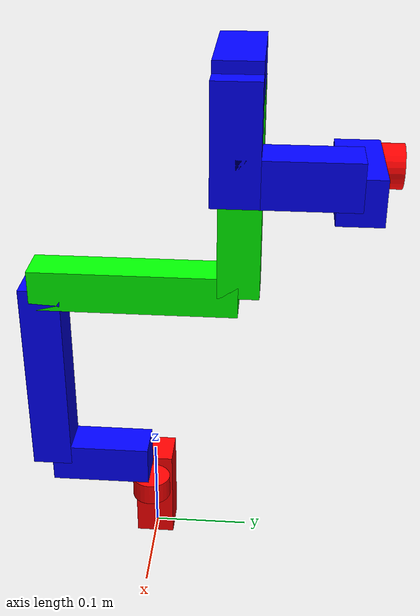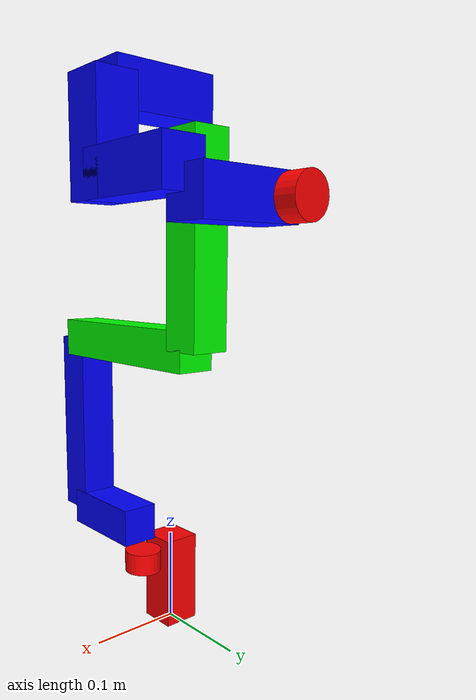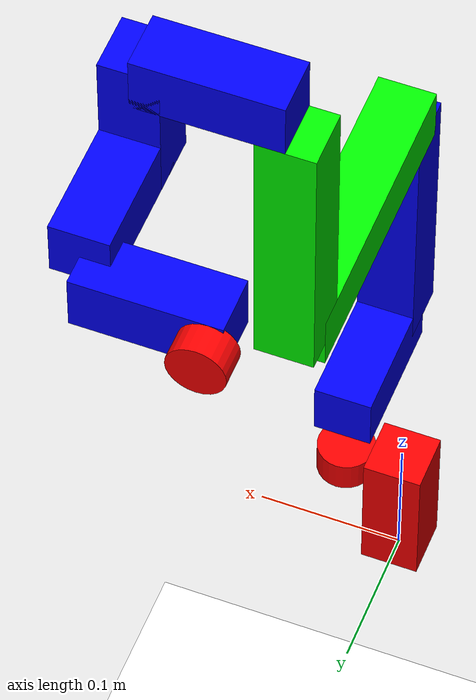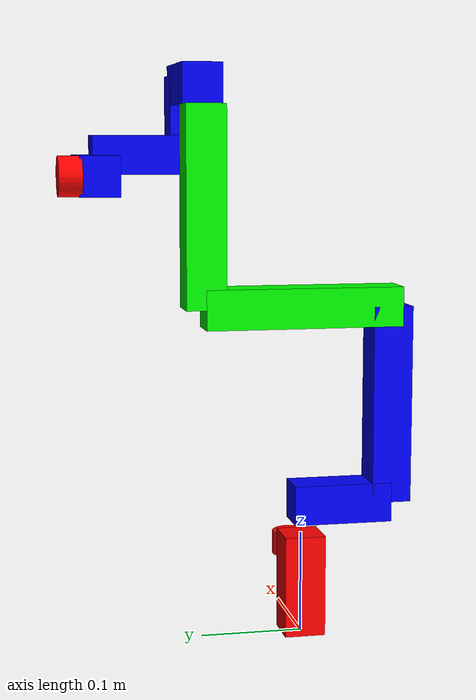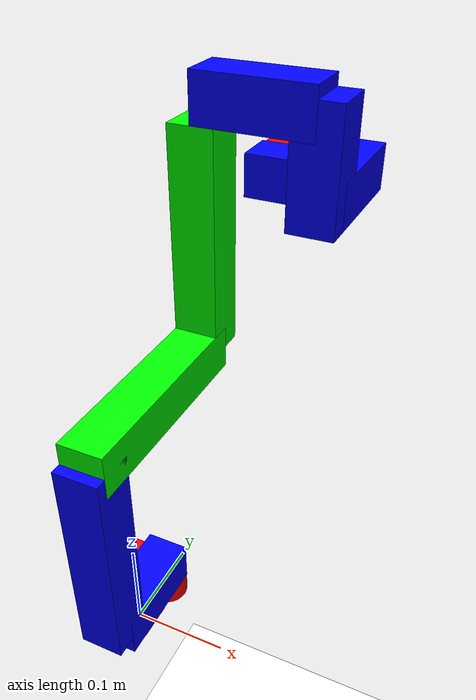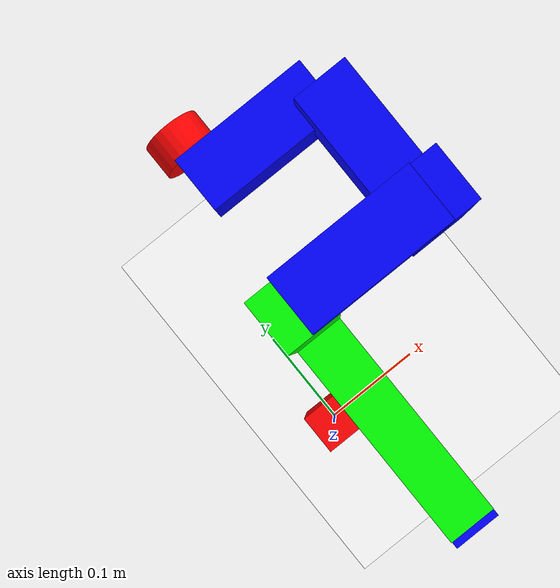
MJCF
<mujoco>
    <actuator>
        <motor gear="10" joint="hinge_1" name="pitch_motor" ctrlrange="-0.5 0.5" ctrllimited="true"/>
        <motor gear="10" joint="hinge_5" name="roll_motor" ctrlrange="-0.5 0.5" ctrllimited="true"/>
    </actuator>
    <asset>
        <material name="red" rgba="1 0 0 1"/>
        <material name="green" rgba="0 1 0 1"/>
        <material name="blue" rgba="0 0 1 1"/>
        <material name="white" rgba="1 1 1 1"/>
    </asset>
    <worldbody>
        <geom type="plane" size="1 1 .1" pos="0 0 -.5" material="white"/>
        <light diffuse=".5 .5 .5" pos="0 0 3" dir="0 0 -1" />
        <body name="motor1" pos="0 0 0">
            <geom type="box" size="0.02 0.02 0.05" pos="0 0 .05" euler="0 0 0" material="red"/>
            <geom type="cylinder" size=".0198 .0115" pos=".0396 0 .0802" euler="0 0 0" material="red"/>
            <body name="link1" pos=".043 0 .0802">
                <joint name="hinge_1" pos="0 0 0" axis="0 0 1" range="-180 180"/>
                <geom type="box" size="0.02 0.05 0.02" pos="0 -0.05 0.04" euler="0 0 0" material="blue"/>
                <geom type="box" size="0.02  0.02 0.1" pos="0 -0.1 0.14" euler="0 0 0" material="blue"/>
                <body name="endeffector" pos="0 -.15 .24">
                    <joint name="hinge_2" pos="0 0 0" axis="0 1 0" range="-180 180"/>
                    <geom type="box" size="0.02 0.1 0.02" pos="0 0.14 0.0" euler="0 0 0" material="green"/>
                    <geom type="box" size="0.02 0.02 0.1" pos="0 0.24 0.1" euler="0 0 0" material="green"/>
                    <body name="link2" pos="0 0.24 0.2">
                        <joint name="hinge_3" pos="0 0 0" axis="0 0 1" range="-180 180"/>
                        <geom type="box" size="0.05 0.02 0.02" pos="0.05 0 0.02" euler="0 0 0" material="blue"/>
                        <geom type="box" size="0.02 0.02 0.05" pos="0.1 0 -0.02" euler="0 0 0" material="blue"/>
                        <body name="link3" pos="0.1 0 -0.05">
                            <joint name="hinge_4" pos="0 0 0" axis="1 0 0" range="-180 180"/>
                            <geom type="box" size="0.02 0.05 0.02" pos="0 0.05 0" euler="0 0 0" material="blue"/>
                            <geom type="box" size="0.05 0.02 0.02" pos="-0.05 0.1 -0.02" euler="0 0 0" material="blue"/>
                            <body name="motor2" pos="-0.0902 0.129 -0.02">
                                <joint name="hinge_5" pos="0 0 0" axis="0 1 0" range="-180 180"/>
                                <geom type="cylinder" size=".0198 .0115" pos="0 0 0" euler="90 0 0" material="red"/>
                            </body>
                        </body>
                    </body>
                </body>
            </body>
        </body>
    </worldbody>
    <equality>
        <connect name="kinematic_link" active="true" body1="motor2"  anchor="0 0 0" />
    </equality>
</mujoco>
